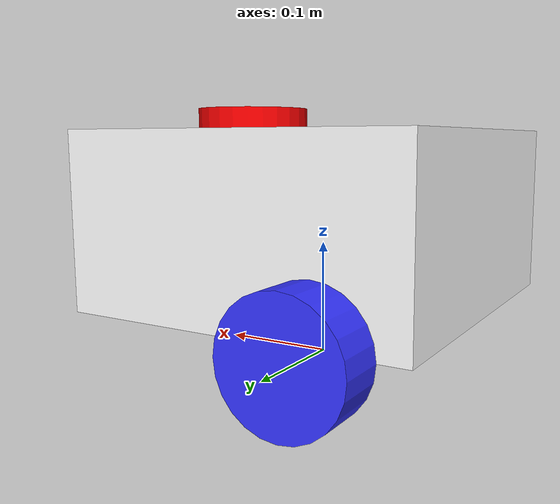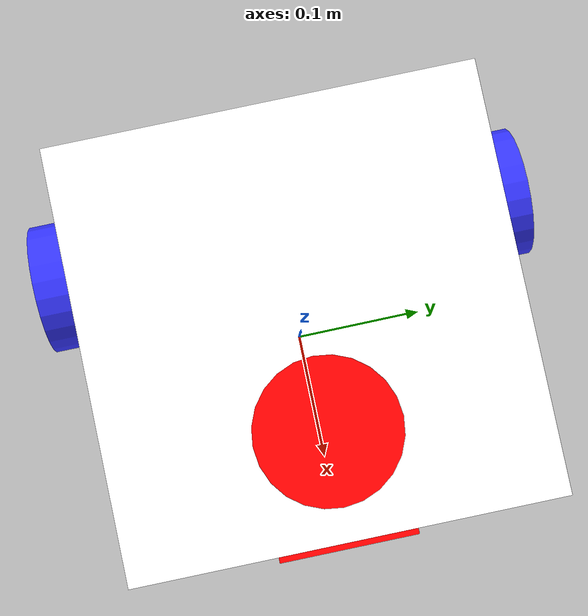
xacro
<?xml version="1.0"?>
<robot name="my_robot" xmlns:xacro="http://www.ros.org/wiki/xacro">

    <xacro:include filename="common_properties.xacro" />
    <xacro:include filename="robot_core.xacro" />
    <xacro:include filename="robot_core_gazebo.xacro" />
    <xacro:include filename="lidar.xacro" />
    <xacro:include filename="camera.xacro" />

</robot>

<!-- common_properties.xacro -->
<robot xmlns:xacro="http://www.ros.org/wiki/xacro">

    <material name="white">
        <color rgba="1 1 1 1" />
    </material>

    <material name="orange">
        <color rgba="1 0.3 0.1 1" />
    </material>

    <material name="blue">
        <color rgba="0.2 0.2 1 1" />
    </material>

    <material name="red">
        <color rgba="1 0 0 1" />
    </material>

    <material name="black">
        <color rgba="0 0 0 1" />
    </material>

    <xacro:macro name="box_inertia" params="m l w h xyz rpy">
        <inertial>
            <origin xyz="${xyz}" rpy="${rpy}" />
            <mass value="${m}" />
            <inertia ixx="${(m/12) * (w*w + h*h)}" ixy="0.0" ixz="0.0"
                     iyy="${(m/12) * (l*l + h*h)}" iyz="0.0"
                     izz="${(m/12) * (l*l + w*w)}"/>
        </inertial>
    </xacro:macro>

    <xacro:macro name="cylinder_inertia" params="m r l xyz rpy">
        <inertial>
            <origin xyz="${xyz}" rpy="${rpy}" />
            <mass value="${m}" />
            <inertia ixx="${(m/12) * (3*r*r + l*l)}" ixy="0.0" ixz="0.0"
                     iyy="${(m/12) * (3*r*r + l*l)}" iyz="0.0"
                     izz="${(m/2) * (r*r)}"/>
        </inertial>
    </xacro:macro>

       <xacro:macro name="sphere_inertia" params="m r xyz rpy">
        <inertial>
            <origin xyz="${xyz}" rpy="${rpy}" />
            <mass value="${m}" />
            <inertia ixx="${2*m*r*r/5}" ixy="0.0" ixz="0.0"
                     iyy="${2*m*r*r/5}" iyz="0.0"
                     izz="${2*m*r*r/5}"/>
        </inertial>
    </xacro:macro>

</robot>

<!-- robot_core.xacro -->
<robot xmlns:xacro="http://www.ros.org/wiki/xacro">

    <xacro:property name="base_length" value="0.3" />
    <xacro:property name="base_width" value="0.3" />
    <xacro:property name="base_height" value="0.15" />
    <xacro:property name="wheel_radius" value="0.05" />
    <xacro:property name="wheel_length" value="0.04" />

    <link name="base_footprint" />

    <link name="base_link">
        <visual>
            <geometry>
                <box size="${base_length} ${base_width} ${base_height}" />
            </geometry>
            <origin xyz="0 0 ${base_height / 2.0}" rpy="0 0 0" />
            <material name="white" />
        </visual>
        <collision>
            <geometry>
                <box size="${base_length} ${base_width} ${base_height}" />
            </geometry>
            <origin xyz="0 0 ${base_height / 2.0}" rpy="0 0 0" />
        </collision>
        <xacro:box_inertia m="0.5" l="${base_length}" w="${base_width}" h="${base_height}"
                           xyz="0 0 ${base_height / 2.0}" rpy="0 0 0" />
    </link>

    <xacro:macro name="wheel_link" params="prefix">
        <link name ="${prefix}_wheel">
            <visual>
                <geometry>
                    <cylinder radius="${wheel_radius}" length="${wheel_length}" />
                </geometry>
                <origin xyz="0 0 0" rpy="${pi/2.0} 0 0" />
                <material name="blue" />
            </visual>
            <collision>
                <geometry>
                    <cylinder radius="${wheel_radius}" length="${wheel_length}" />
                </geometry>
                <origin xyz="0 0 0" rpy="${pi/2.0} 0 0" />
            </collision>
            <xacro:cylinder_inertia m="0.1" r="${wheel_radius}" l="${wheel_length}"
                        xyz="0 0 0" rpy="${pi/2.0} 0 0" />
        </link>
    </xacro:macro>

    <xacro:wheel_link prefix="right" />
    <xacro:wheel_link prefix="left" />

    <link name="caster_wheel">
        <visual>
            <geometry>
                <sphere radius="${wheel_radius}" />
            </geometry>
            <origin xyz="0 0 0" rpy="0 0 0" />
            <material name="black" />
        </visual>
        <collision>
            <geometry>
                <sphere radius="${wheel_radius}" />
            </geometry>
            <origin xyz="0 0 0" rpy="0 0 0" />
        </collision>
        <xacro:sphere_inertia m="0.1" r="${2 * wheel_radius / 2.0}"
                    xyz="0 0 0" rpy="0 0 0" />
    </link>

    <joint name="base_joint" type="fixed">
        <parent link="base_footprint" />
        <child link="base_link" />
        <origin xyz="0 0 ${wheel_radius}" rpy="0 0 0" />
    </joint>

    <joint name="base_left_wheel_joint" type="continuous">
        <parent link="base_link" />
        <child link="left_wheel" />
        <origin xyz="${-base_length / 4.0} ${(base_width + wheel_length) / 2.0} 0" rpy="0 0 0" />
        <axis xyz="0 1 0" />
    </joint>

    <joint name="base_right_wheel_joint" type="continuous">
        <parent link="base_link" />
        <child link="right_wheel" />
        <origin xyz="${-base_length / 4.0} ${-(base_width + wheel_length)  / 2.0} 0" rpy="0 0 0" />
        <axis xyz="0 1 0" />
    </joint>

    <joint name="base_caster_wheel_joint" type="fixed">
        <parent link="base_link" />
        <child link="caster_wheel" />
        <origin xyz="${base_length / 3.0} 0 0" rpy="0 0 0" />
    </joint>

</robot>

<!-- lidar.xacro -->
<robot xmlns:xacro="http://www.ros.org/wiki/xacro">

    <link name="laser_frame">

        <visual>
            <geometry>
                <cylinder radius="${wheel_radius}" length="${wheel_length/2.0}" />
            </geometry>
            <origin xyz="0 0 0" rpy="0 0 0" />
            <material name="red" />
        </visual>
        <collision>
            <geometry>
                <cylinder radius="${wheel_radius}" length="${wheel_length/2.0}" />
            </geometry>
            <origin xyz="0 0 0" rpy="0 0 0" />
        </collision>
        <xacro:cylinder_inertia m="0.01" r="${wheel_radius}" l="${wheel_length/2.0}"
                        xyz="0 0 0" rpy="0 0 0" />
    </link>

    <joint name="laser_joint" type="fixed">
        <parent link="base_link" />
        <child link="laser_frame" />
        <origin xyz="${base_length/4.0} 0 ${base_height + (wheel_length/4.0)}" rpy="0 0 0" />
    </joint>

    <gazebo reference="laser_frame">
        <material>Gazebo/Red</material>

        <sensor name="laser" type="ray">
            <pose> 0 0 0 0 0 0 </pose>
            <visualize>false</visualize>
            <update_rate>10</update_rate>
            <ray>
                <scan>
                    <horizontal>
                        <samples>360</samples>
                        <min_angle>-3.14</min_angle>
                        <max_angle>3.14</max_angle>
                    </horizontal>
                </scan>
                <range>
                    <min>0.3</min>
                    <max>6</max>
                </range>
            </ray>
            <plugin name="laser_controller" filename="libgazebo_ros_ray_sensor.so">
                <ros>
                    <argument>~/out:=scan</argument>
                </ros>
                <output_type>sensor_msgs/LaserScan</output_type>
                <frame_name>laser_frame</frame_name>
            </plugin>
        </sensor>
    </gazebo>

</robot>

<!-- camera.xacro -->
<robot xmlns:xacro="http://www.ros.org/wiki/xacro">

    <xacro:property name="camera_length" value="0.01" />
    <xacro:property name="camera_width" value="0.1" />
    <xacro:property name="camera_height" value="0.05" />

    <link name="camera_link">

        <visual>
            <geometry>
                <box size="${camera_length} ${camera_width} ${camera_height}" />
            </geometry>
            <material name="red" />
        </visual>
        <collision>
              <geometry>
                <box size="${camera_length} ${camera_width} ${camera_height}" />
            </geometry>
        </collision>
        <xacro:box_inertia m="0.1" l="${camera_length}" w="${camera_width}" h="${camera_height}" xyz="0 0 0" rpy="0 0 0" />
    </link>

    <joint name="base_camera_joint" type="fixed">
        <parent link="base_link" />
        <child link="camera_link" />
        <origin xyz="${(base_length + camera_length) / 2.0} 0 ${base_height / 2.0}" rpy="0 0 0" />
    </joint>

    <link name="camera_link_optical" />

    <joint name="base_camera_optical_joint" type="fixed">
        <parent link="camera_link" />
        <child link="camera_link_optical" />
        <origin xyz="0 0 0" rpy="${-pi/2.0} 0 ${-pi/2.0}" />
    </joint>

    <gazebo reference="camera_link">
        <material>Gazebo/Red</material>
        <sensor name="camera" type="camera">
            <pose>0 0 0 0 0 0</pose>
            <visualize>true</visualize>
            <update_rate>10</update_rate>

            <plugin name="camera_controller" filename="libgazebo_ros_camera.so">
                <frame_name>camera_link_optical</frame_name>
            </plugin>
        </sensor>
    </gazebo>

</robot>
